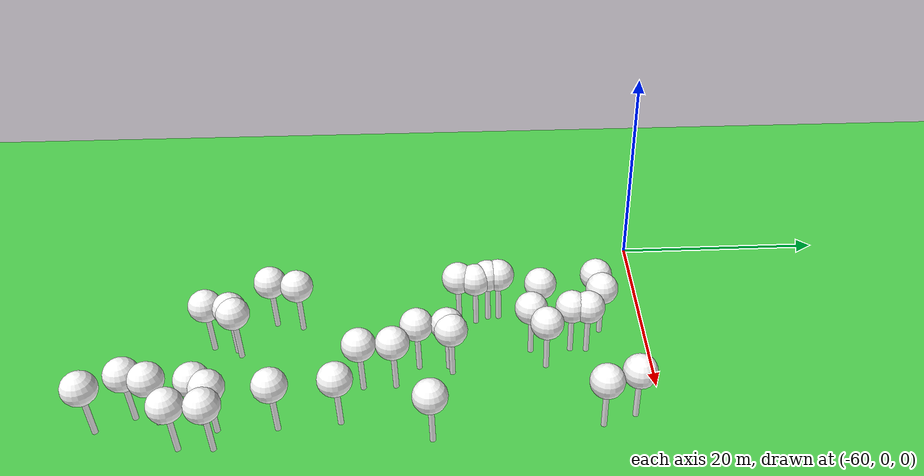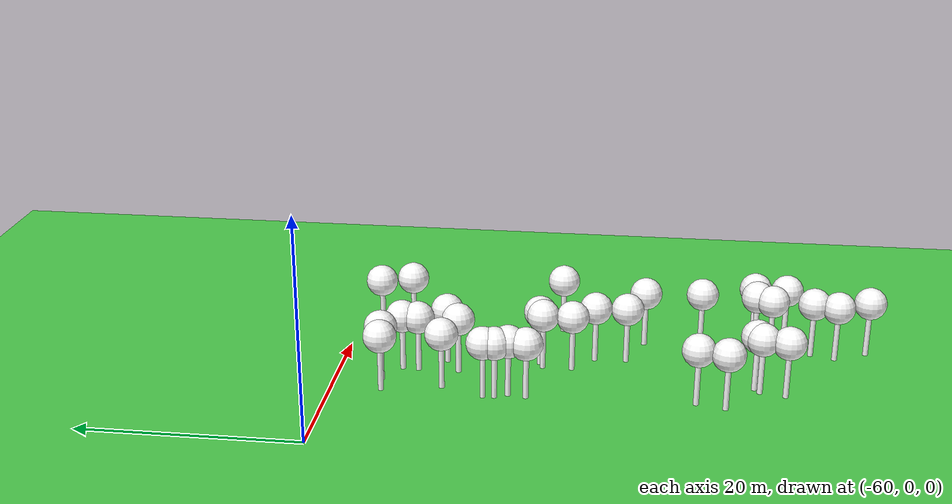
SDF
<sdf version="1.8">
 <world name="forest_world">
  <model name="tree_simple481">
   <static>1</static>
   <link name="link">
    <pose>0 0 0.1 0 -0 0</pose>
    <collision name="collision_trunk">
     <pose>0 0 2 0 -0 0</pose>
     <geometry><cylinder><radius>0.25</radius><length>4</length></cylinder></geometry>
    </collision>
    <collision name="collision_treetop">
     <pose>0 0 5.2 0 -0 0</pose>
     <geometry><sphere><radius>1.5</radius></sphere></geometry>
    </collision>
    <visual name="trunk_481">
     <pose>0 0 2 0 -0 0</pose>
     <geometry><cylinder><radius>0.25</radius><length>4</length></cylinder></geometry>
     <material>
      <ambient>0.5 0.5 0.5 1</ambient>
      <diffuse>1.0 1.0 1.0 1</diffuse>
      <specular>0.0 0.0 0.0 1</specular>
      <pbr>
       <metal>
        <albedo_map>file://textures/tree_simple_trunk.jpg</albedo_map>
        <metalness>0.0</metalness>
        <roughness>0.8</roughness>
       </metal>
      </pbr>
     </material>
    </visual>
    <visual name="treetop_481">
     <pose>0 0 5.2 0 -0 0</pose>
     <geometry><sphere><radius>1.5</radius></sphere></geometry>
     <material>
      <ambient>0.5 0.5 0.5 1</ambient>
      <diffuse>1.0 1.0 1.0 1</diffuse>
      <specular>0.0 0.0 0.0 1</specular>
      <pbr>
       <metal>
        <albedo_map>file://textures/tree_simple_treetop.jpg</albedo_map>
        <metalness>0.0</metalness>
        <roughness>0.9</roughness>
       </metal>
      </pbr>
     </material>
    </visual>
   </link>
   <pose>-37.2553351017 -39.4739685818 0 0 -0 0</pose>
  </model>
  <model name="tree_simple438">
   <static>1</static>
   <link name="link">
    <pose>0 0 0.1 0 -0 0</pose>
    <collision name="collision_trunk">
     <pose>0 0 2 0 -0 0</pose>
     <geometry><cylinder><radius>0.25</radius><length>4</length></cylinder></geometry>
    </collision>
    <collision name="collision_treetop">
     <pose>0 0 5.2 0 -0 0</pose>
     <geometry><sphere><radius>1.5</radius></sphere></geometry>
    </collision>
    <visual name="trunk_438">
     <pose>0 0 2 0 -0 0</pose>
     <geometry><cylinder><radius>0.25</radius><length>4</length></cylinder></geometry>
     <material>
      <ambient>0.5 0.5 0.5 1</ambient>
      <diffuse>1.0 1.0 1.0 1</diffuse>
      <specular>0.0 0.0 0.0 1</specular>
      <pbr>
       <metal>
        <albedo_map>file://textures/tree_simple_trunk.jpg</albedo_map>
        <metalness>0.0</metalness>
        <roughness>0.8</roughness>
       </metal>
      </pbr>
     </material>
    </visual>
    <visual name="treetop_438">
     <pose>0 0 5.2 0 -0 0</pose>
     <geometry><sphere><radius>1.5</radius></sphere></geometry>
     <material>
      <ambient>0.5 0.5 0.5 1</ambient>
      <diffuse>1.0 1.0 1.0 1</diffuse>
      <specular>0.0 0.0 0.0 1</specular>
      <pbr>
       <metal>
        <albedo_map>file://textures/tree_simple_treetop.jpg</albedo_map>
        <metalness>0.0</metalness>
        <roughness>0.9</roughness>
       </metal>
      </pbr>
     </material>
    </visual>
   </link>
   <pose>-34.2898013361 -38.0039942016 0 0 -0 0</pose>
  </model>
  <model name="tree_simple434">
   <static>1</static>
   <link name="link">
    <pose>0 0 0.1 0 -0 0</pose>
    <collision name="collision_trunk">
     <pose>0 0 2 0 -0 0</pose>
     <geometry><cylinder><radius>0.25</radius><length>4</length></cylinder></geometry>
    </collision>
    <collision name="collision_treetop">
     <pose>0 0 5.2 0 -0 0</pose>
     <geometry><sphere><radius>1.5</radius></sphere></geometry>
    </collision>
    <visual name="trunk_434">
     <pose>0 0 2 0 -0 0</pose>
     <geometry><cylinder><radius>0.25</radius><length>4</length></cylinder></geometry>
     <material>
      <ambient>0.5 0.5 0.5 1</ambient>
      <diffuse>1.0 1.0 1.0 1</diffuse>
      <specular>0.0 0.0 0.0 1</specular>
      <pbr>
       <metal>
        <albedo_map>file://textures/tree_simple_trunk.jpg</albedo_map>
        <metalness>0.0</metalness>
        <roughness>0.8</roughness>
       </metal>
      </pbr>
     </material>
    </visual>
    <visual name="treetop_434">
     <pose>0 0 5.2 0 -0 0</pose>
     <geometry><sphere><radius>1.5</radius></sphere></geometry>
     <material>
      <ambient>0.5 0.5 0.5 1</ambient>
      <diffuse>1.0 1.0 1.0 1</diffuse>
      <specular>0.0 0.0 0.0 1</specular>
      <pbr>
       <metal>
        <albedo_map>file://textures/tree_simple_treetop.jpg</albedo_map>
        <metalness>0.0</metalness>
        <roughness>0.9</roughness>
       </metal>
      </pbr>
     </material>
    </visual>
   </link>
   <pose>-43.1297442783 -18.5304452852 0 0 -0 0</pose>
  </model>
  <model name="tree_simple404">
   <static>1</static>
   <link name="link">
    <pose>0 0 0.1 0 -0 0</pose>
    <collision name="collision_trunk">
     <pose>0 0 2 0 -0 0</pose>
     <geometry><cylinder><radius>0.25</radius><length>4</length></cylinder></geometry>
    </collision>
    <collision name="collision_treetop">
     <pose>0 0 5.2 0 -0 0</pose>
     <geometry><sphere><radius>1.5</radius></sphere></geometry>
    </collision>
    <visual name="trunk_404">
     <pose>0 0 2 0 -0 0</pose>
     <geometry><cylinder><radius>0.25</radius><length>4</length></cylinder></geometry>
     <material>
      <ambient>0.5 0.5 0.5 1</ambient>
      <diffuse>1.0 1.0 1.0 1</diffuse>
      <specular>0.0 0.0 0.0 1</specular>
      <pbr>
       <metal>
        <albedo_map>file://textures/tree_simple_trunk.jpg</albedo_map>
        <metalness>0.0</metalness>
        <roughness>0.8</roughness>
       </metal>
      </pbr>
     </material>
    </visual>
    <visual name="treetop_404">
     <pose>0 0 5.2 0 -0 0</pose>
     <geometry><sphere><radius>1.5</radius></sphere></geometry>
     <material>
      <ambient>0.5 0.5 0.5 1</ambient>
      <diffuse>1.0 1.0 1.0 1</diffuse>
      <specular>0.0 0.0 0.0 1</specular>
      <pbr>
       <metal>
        <albedo_map>file://textures/tree_simple_treetop.jpg</albedo_map>
        <metalness>0.0</metalness>
        <roughness>0.9</roughness>
       </metal>
      </pbr>
     </material>
    </visual>
   </link>
   <pose>-45.4192895763 -37.6687183978 0 0 -0 0</pose>
  </model>
  <model name="tree_simple403">
   <static>1</static>
   <link name="link">
    <pose>0 0 0.1 0 -0 0</pose>
    <collision name="collision_trunk">
     <pose>0 0 2 0 -0 0</pose>
     <geometry><cylinder><radius>0.25</radius><length>4</length></cylinder></geometry>
    </collision>
    <collision name="collision_treetop">
     <pose>0 0 5.2 0 -0 0</pose>
     <geometry><sphere><radius>1.5</radius></sphere></geometry>
    </collision>
    <visual name="trunk_403">
     <pose>0 0 2 0 -0 0</pose>
     <geometry><cylinder><radius>0.25</radius><length>4</length></cylinder></geometry>
     <material>
      <ambient>0.5 0.5 0.5 1</ambient>
      <diffuse>1.0 1.0 1.0 1</diffuse>
      <specular>0.0 0.0 0.0 1</specular>
      <pbr>
       <metal>
        <albedo_map>file://textures/tree_simple_trunk.jpg</albedo_map>
        <metalness>0.0</metalness>
        <roughness>0.8</roughness>
       </metal>
      </pbr>
     </material>
    </visual>
    <visual name="treetop_403">
     <pose>0 0 5.2 0 -0 0</pose>
     <geometry><sphere><radius>1.5</radius></sphere></geometry>
     <material>
      <ambient>0.5 0.5 0.5 1</ambient>
      <diffuse>1.0 1.0 1.0 1</diffuse>
      <specular>0.0 0.0 0.0 1</specular>
      <pbr>
       <metal>
        <albedo_map>file://textures/tree_simple_treetop.jpg</albedo_map>
        <metalness>0.0</metalness>
        <roughness>0.9</roughness>
       </metal>
      </pbr>
     </material>
    </visual>
   </link>
   <pose>-49.5316989744 -17.555694289 0 0 -0 0</pose>
  </model>
  <model name="tree_simple396">
   <static>1</static>
   <link name="link">
    <pose>0 0 0.1 0 -0 0</pose>
    <collision name="collision_trunk">
     <pose>0 0 2 0 -0 0</pose>
     <geometry><cylinder><radius>0.25</radius><length>4</length></cylinder></geometry>
    </collision>
    <collision name="collision_treetop">
     <pose>0 0 5.2 0 -0 0</pose>
     <geometry><sphere><radius>1.5</radius></sphere></geometry>
    </collision>
    <visual name="trunk_396">
     <pose>0 0 2 0 -0 0</pose>
     <geometry><cylinder><radius>0.25</radius><length>4</length></cylinder></geometry>
     <material>
      <ambient>0.5 0.5 0.5 1</ambient>
      <diffuse>1.0 1.0 1.0 1</diffuse>
      <specular>0.0 0.0 0.0 1</specular>
      <pbr>
       <metal>
        <albedo_map>file://textures/tree_simple_trunk.jpg</albedo_map>
        <metalness>0.0</metalness>
        <roughness>0.8</roughness>
       </metal>
      </pbr>
     </material>
    </visual>
    <visual name="treetop_396">
     <pose>0 0 5.2 0 -0 0</pose>
     <geometry><sphere><radius>1.5</radius></sphere></geometry>
     <material>
      <ambient>0.5 0.5 0.5 1</ambient>
      <diffuse>1.0 1.0 1.0 1</diffuse>
      <specular>0.0 0.0 0.0 1</specular>
      <pbr>
       <metal>
        <albedo_map>file://textures/tree_simple_treetop.jpg</albedo_map>
        <metalness>0.0</metalness>
        <roughness>0.9</roughness>
       </metal>
      </pbr>
     </material>
    </visual>
   </link>
   <pose>-34.4954871255 -19.8377607827 0 0 -0 0</pose>
  </model>
  <model name="tree_simple375">
   <static>1</static>
   <link name="link">
    <pose>0 0 0.1 0 -0 0</pose>
    <collision name="collision_trunk">
     <pose>0 0 2 0 -0 0</pose>
     <geometry><cylinder><radius>0.25</radius><length>4</length></cylinder></geometry>
    </collision>
    <collision name="collision_treetop">
     <pose>0 0 5.2 0 -0 0</pose>
     <geometry><sphere><radius>1.5</radius></sphere></geometry>
    </collision>
    <visual name="trunk_375">
     <pose>0 0 2 0 -0 0</pose>
     <geometry><cylinder><radius>0.25</radius><length>4</length></cylinder></geometry>
     <material>
      <ambient>0.5 0.5 0.5 1</ambient>
      <diffuse>1.0 1.0 1.0 1</diffuse>
      <specular>0.0 0.0 0.0 1</specular>
      <pbr>
       <metal>
        <albedo_map>file://textures/tree_simple_trunk.jpg</albedo_map>
        <metalness>0.0</metalness>
        <roughness>0.8</roughness>
       </metal>
      </pbr>
     </material>
    </visual>
    <visual name="treetop_375">
     <pose>0 0 5.2 0 -0 0</pose>
     <geometry><sphere><radius>1.5</radius></sphere></geometry>
     <material>
      <ambient>0.5 0.5 0.5 1</ambient>
      <diffuse>1.0 1.0 1.0 1</diffuse>
      <specular>0.0 0.0 0.0 1</specular>
      <pbr>
       <metal>
        <albedo_map>file://textures/tree_simple_treetop.jpg</albedo_map>
        <metalness>0.0</metalness>
        <roughness>0.9</roughness>
       </metal>
      </pbr>
     </material>
    </visual>
   </link>
   <pose>-48.3845088934 -9.9079742 0 0 -0 0</pose>
  </model>
  <model name="tree_simple373">
   <static>1</static>
   <link name="link">
    <pose>0 0 0.1 0 -0 0</pose>
    <collision name="collision_trunk">
     <pose>0 0 2 0 -0 0</pose>
     <geometry><cylinder><radius>0.25</radius><length>4</length></cylinder></geometry>
    </collision>
    <collision name="collision_treetop">
     <pose>0 0 5.2 0 -0 0</pose>
     <geometry><sphere><radius>1.5</radius></sphere></geometry>
    </collision>
    <visual name="trunk_373">
     <pose>0 0 2 0 -0 0</pose>
     <geometry><cylinder><radius>0.25</radius><length>4</length></cylinder></geometry>
     <material>
      <ambient>0.5 0.5 0.5 1</ambient>
      <diffuse>1.0 1.0 1.0 1</diffuse>
      <specular>0.0 0.0 0.0 1</specular>
      <pbr>
       <metal>
        <albedo_map>file://textures/tree_simple_trunk.jpg</albedo_map>
        <metalness>0.0</metalness>
        <roughness>0.8</roughness>
       </metal>
      </pbr>
     </material>
    </visual>
    <visual name="treetop_373">
     <pose>0 0 5.2 0 -0 0</pose>
     <geometry><sphere><radius>1.5</radius></sphere></geometry>
     <material>
      <ambient>0.5 0.5 0.5 1</ambient>
      <diffuse>1.0 1.0 1.0 1</diffuse>
      <specular>0.0 0.0 0.0 1</specular>
      <pbr>
       <metal>
        <albedo_map>file://textures/tree_simple_treetop.jpg</albedo_map>
        <metalness>0.0</metalness>
        <roughness>0.9</roughness>
       </metal>
      </pbr>
     </material>
    </visual>
   </link>
   <pose>-43.1842610619 -21.2191114712 0 0 -0 0</pose>
  </model>
  <model name="tree_simple370">
   <static>1</static>
   <link name="link">
    <pose>0 0 0.1 0 -0 0</pose>
    <collision name="collision_trunk">
     <pose>0 0 2 0 -0 0</pose>
     <geometry><cylinder><radius>0.25</radius><length>4</length></cylinder></geometry>
    </collision>
    <collision name="collision_treetop">
     <pose>0 0 5.2 0 -0 0</pose>
     <geometry><sphere><radius>1.5</radius></sphere></geometry>
    </collision>
    <visual name="trunk_370">
     <pose>0 0 2 0 -0 0</pose>
     <geometry><cylinder><radius>0.25</radius><length>4</length></cylinder></geometry>
     <material>
      <ambient>0.5 0.5 0.5 1</ambient>
      <diffuse>1.0 1.0 1.0 1</diffuse>
      <specular>0.0 0.0 0.0 1</specular>
      <pbr>
       <metal>
        <albedo_map>file://textures/tree_simple_trunk.jpg</albedo_map>
        <metalness>0.0</metalness>
        <roughness>0.8</roughness>
       </metal>
      </pbr>
     </material>
    </visual>
    <visual name="treetop_370">
     <pose>0 0 5.2 0 -0 0</pose>
     <geometry><sphere><radius>1.5</radius></sphere></geometry>
     <material>
      <ambient>0.5 0.5 0.5 1</ambient>
      <diffuse>1.0 1.0 1.0 1</diffuse>
      <specular>0.0 0.0 0.0 1</specular>
      <pbr>
       <metal>
        <albedo_map>file://textures/tree_simple_treetop.jpg</albedo_map>
        <metalness>0.0</metalness>
        <roughness>0.9</roughness>
       </metal>
      </pbr>
     </material>
    </visual>
   </link>
   <pose>-36.749040883 -27.7198172667 0 0 -0 0</pose>
  </model>
  <model name="tree_simple369">
   <static>1</static>
   <link name="link">
    <pose>0 0 0.1 0 -0 0</pose>
    <collision name="collision_trunk">
     <pose>0 0 2 0 -0 0</pose>
     <geometry><cylinder><radius>0.25</radius><length>4</length></cylinder></geometry>
    </collision>
    <collision name="collision_treetop">
     <pose>0 0 5.2 0 -0 0</pose>
     <geometry><sphere><radius>1.5</radius></sphere></geometry>
    </collision>
    <visual name="trunk_369">
     <pose>0 0 2 0 -0 0</pose>
     <geometry><cylinder><radius>0.25</radius><length>4</length></cylinder></geometry>
     <material>
      <ambient>0.5 0.5 0.5 1</ambient>
      <diffuse>1.0 1.0 1.0 1</diffuse>
      <specular>0.0 0.0 0.0 1</specular>
      <pbr>
       <metal>
        <albedo_map>file://textures/tree_simple_trunk.jpg</albedo_map>
        <metalness>0.0</metalness>
        <roughness>0.8</roughness>
       </metal>
      </pbr>
     </material>
    </visual>
    <visual name="treetop_369">
     <pose>0 0 5.2 0 -0 0</pose>
     <geometry><sphere><radius>1.5</radius></sphere></geometry>
     <material>
      <ambient>0.5 0.5 0.5 1</ambient>
      <diffuse>1.0 1.0 1.0 1</diffuse>
      <specular>0.0 0.0 0.0 1</specular>
      <pbr>
       <metal>
        <albedo_map>file://textures/tree_simple_treetop.jpg</albedo_map>
        <metalness>0.0</metalness>
        <roughness>0.9</roughness>
       </metal>
      </pbr>
     </material>
    </visual>
   </link>
   <pose>-40.8904214301 -23.21757156 0 0 -0 0</pose>
  </model>
  <model name="tree_simple341">
   <static>1</static>
   <link name="link">
    <pose>0 0 0.1 0 -0 0</pose>
    <collision name="collision_trunk">
     <pose>0 0 2 0 -0 0</pose>
     <geometry><cylinder><radius>0.25</radius><length>4</length></cylinder></geometry>
    </collision>
    <collision name="collision_treetop">
     <pose>0 0 5.2 0 -0 0</pose>
     <geometry><sphere><radius>1.5</radius></sphere></geometry>
    </collision>
    <visual name="trunk_341">
     <pose>0 0 2 0 -0 0</pose>
     <geometry><cylinder><radius>0.25</radius><length>4</length></cylinder></geometry>
     <material>
      <ambient>0.5 0.5 0.5 1</ambient>
      <diffuse>1.0 1.0 1.0 1</diffuse>
      <specular>0.0 0.0 0.0 1</specular>
      <pbr>
       <metal>
        <albedo_map>file://textures/tree_simple_trunk.jpg</albedo_map>
        <metalness>0.0</metalness>
        <roughness>0.8</roughness>
       </metal>
      </pbr>
     </material>
    </visual>
    <visual name="treetop_341">
     <pose>0 0 5.2 0 -0 0</pose>
     <geometry><sphere><radius>1.5</radius></sphere></geometry>
     <material>
      <ambient>0.5 0.5 0.5 1</ambient>
      <diffuse>1.0 1.0 1.0 1</diffuse>
      <specular>0.0 0.0 0.0 1</specular>
      <pbr>
       <metal>
        <albedo_map>file://textures/tree_simple_treetop.jpg</albedo_map>
        <metalness>0.0</metalness>
        <roughness>0.9</roughness>
       </metal>
      </pbr>
     </material>
    </visual>
   </link>
   <pose>-49.5073976614 -4.58498276765 0 0 -0 0</pose>
  </model>
  <model name="tree_simple326">
   <static>1</static>
   <link name="link">
    <pose>0 0 0.1 0 -0 0</pose>
    <collision name="collision_trunk">
     <pose>0 0 2 0 -0 0</pose>
     <geometry><cylinder><radius>0.25</radius><length>4</length></cylinder></geometry>
    </collision>
    <collision name="collision_treetop">
     <pose>0 0 5.2 0 -0 0</pose>
     <geometry><sphere><radius>1.5</radius></sphere></geometry>
    </collision>
    <visual name="trunk_326">
     <pose>0 0 2 0 -0 0</pose>
     <geometry><cylinder><radius>0.25</radius><length>4</length></cylinder></geometry>
     <material>
      <ambient>0.5 0.5 0.5 1</ambient>
      <diffuse>1.0 1.0 1.0 1</diffuse>
      <specular>0.0 0.0 0.0 1</specular>
      <pbr>
       <metal>
        <albedo_map>file://textures/tree_simple_trunk.jpg</albedo_map>
        <metalness>0.0</metalness>
        <roughness>0.8</roughness>
       </metal>
      </pbr>
     </material>
    </visual>
    <visual name="treetop_326">
     <pose>0 0 5.2 0 -0 0</pose>
     <geometry><sphere><radius>1.5</radius></sphere></geometry>
     <material>
      <ambient>0.5 0.5 0.5 1</ambient>
      <diffuse>1.0 1.0 1.0 1</diffuse>
      <specular>0.0 0.0 0.0 1</specular>
      <pbr>
       <metal>
        <albedo_map>file://textures/tree_simple_treetop.jpg</albedo_map>
        <metalness>0.0</metalness>
        <roughness>0.9</roughness>
       </metal>
      </pbr>
     </material>
    </visual>
   </link>
   <pose>-44.8519520945 -5.80439962373 0 0 -0 0</pose>
  </model>
  <model name="tree_simple323">
   <static>1</static>
   <link name="link">
    <pose>0 0 0.1 0 -0 0</pose>
    <collision name="collision_trunk">
     <pose>0 0 2 0 -0 0</pose>
     <geometry><cylinder><radius>0.25</radius><length>4</length></cylinder></geometry>
    </collision>
    <collision name="collision_treetop">
     <pose>0 0 5.2 0 -0 0</pose>
     <geometry><sphere><radius>1.5</radius></sphere></geometry>
    </collision>
    <visual name="trunk_323">
     <pose>0 0 2 0 -0 0</pose>
     <geometry><cylinder><radius>0.25</radius><length>4</length></cylinder></geometry>
     <material>
      <ambient>0.5 0.5 0.5 1</ambient>
      <diffuse>1.0 1.0 1.0 1</diffuse>
      <specular>0.0 0.0 0.0 1</specular>
      <pbr>
       <metal>
        <albedo_map>file://textures/tree_simple_trunk.jpg</albedo_map>
        <metalness>0.0</metalness>
        <roughness>0.8</roughness>
       </metal>
      </pbr>
     </material>
    </visual>
    <visual name="treetop_323">
     <pose>0 0 5.2 0 -0 0</pose>
     <geometry><sphere><radius>1.5</radius></sphere></geometry>
     <material>
      <ambient>0.5 0.5 0.5 1</ambient>
      <diffuse>1.0 1.0 1.0 1</diffuse>
      <specular>0.0 0.0 0.0 1</specular>
      <pbr>
       <metal>
        <albedo_map>file://textures/tree_simple_treetop.jpg</albedo_map>
        <metalness>0.0</metalness>
        <roughness>0.9</roughness>
       </metal>
      </pbr>
     </material>
    </visual>
   </link>
   <pose>-44.9542016132 -10.9647646888 0 0 -0 0</pose>
  </model>
  <model name="tree_simple318">
   <static>1</static>
   <link name="link">
    <pose>0 0 0.1 0 -0 0</pose>
    <collision name="collision_trunk">
     <pose>0 0 2 0 -0 0</pose>
     <geometry><cylinder><radius>0.25</radius><length>4</length></cylinder></geometry>
    </collision>
    <collision name="collision_treetop">
     <pose>0 0 5.2 0 -0 0</pose>
     <geometry><sphere><radius>1.5</radius></sphere></geometry>
    </collision>
    <visual name="trunk_318">
     <pose>0 0 2 0 -0 0</pose>
     <geometry><cylinder><radius>0.25</radius><length>4</length></cylinder></geometry>
     <material>
      <ambient>0.5 0.5 0.5 1</ambient>
      <diffuse>1.0 1.0 1.0 1</diffuse>
      <specular>0.0 0.0 0.0 1</specular>
      <pbr>
       <metal>
        <albedo_map>file://textures/tree_simple_trunk.jpg</albedo_map>
        <metalness>0.0</metalness>
        <roughness>0.8</roughness>
       </metal>
      </pbr>
     </material>
    </visual>
    <visual name="treetop_318">
     <pose>0 0 5.2 0 -0 0</pose>
     <geometry><sphere><radius>1.5</radius></sphere></geometry>
     <material>
      <ambient>0.5 0.5 0.5 1</ambient>
      <diffuse>1.0 1.0 1.0 1</diffuse>
      <specular>0.0 0.0 0.0 1</specular>
      <pbr>
       <metal>
        <albedo_map>file://textures/tree_simple_treetop.jpg</albedo_map>
        <metalness>0.0</metalness>
        <roughness>0.9</roughness>
       </metal>
      </pbr>
     </material>
    </visual>
   </link>
   <pose>-35.5307244579 -5.31130875944 0 0 -0 0</pose>
  </model>
  <model name="tree_simple312">
   <static>1</static>
   <link name="link">
    <pose>0 0 0.1 0 -0 0</pose>
    <collision name="collision_trunk">
     <pose>0 0 2 0 -0 0</pose>
     <geometry><cylinder><radius>0.25</radius><length>4</length></cylinder></geometry>
    </collision>
    <collision name="collision_treetop">
     <pose>0 0 5.2 0 -0 0</pose>
     <geometry><sphere><radius>1.5</radius></sphere></geometry>
    </collision>
    <visual name="trunk_312">
     <pose>0 0 2 0 -0 0</pose>
     <geometry><cylinder><radius>0.25</radius><length>4</length></cylinder></geometry>
     <material>
      <ambient>0.5 0.5 0.5 1</ambient>
      <diffuse>1.0 1.0 1.0 1</diffuse>
      <specular>0.0 0.0 0.0 1</specular>
      <pbr>
       <metal>
        <albedo_map>file://textures/tree_simple_trunk.jpg</albedo_map>
        <metalness>0.0</metalness>
        <roughness>0.8</roughness>
       </metal>
      </pbr>
     </material>
    </visual>
    <visual name="treetop_312">
     <pose>0 0 5.2 0 -0 0</pose>
     <geometry><sphere><radius>1.5</radius></sphere></geometry>
     <material>
      <ambient>0.5 0.5 0.5 1</ambient>
      <diffuse>1.0 1.0 1.0 1</diffuse>
      <specular>0.0 0.0 0.0 1</specular>
      <pbr>
       <metal>
        <albedo_map>file://textures/tree_simple_treetop.jpg</albedo_map>
        <metalness>0.0</metalness>
        <roughness>0.9</roughness>
       </metal>
      </pbr>
     </material>
    </visual>
   </link>
   <pose>-49.0127914394 -32.4704975261 0 0 -0 0</pose>
  </model>
  <model name="tree_simple259">
   <static>1</static>
   <link name="link">
    <pose>0 0 0.1 0 -0 0</pose>
    <collision name="collision_trunk">
     <pose>0 0 2 0 -0 0</pose>
     <geometry><cylinder><radius>0.25</radius><length>4</length></cylinder></geometry>
    </collision>
    <collision name="collision_treetop">
     <pose>0 0 5.2 0 -0 0</pose>
     <geometry><sphere><radius>1.5</radius></sphere></geometry>
    </collision>
    <visual name="trunk_259">
     <pose>0 0 2 0 -0 0</pose>
     <geometry><cylinder><radius>0.25</radius><length>4</length></cylinder></geometry>
     <material>
      <ambient>0.5 0.5 0.5 1</ambient>
      <diffuse>1.0 1.0 1.0 1</diffuse>
      <specular>0.0 0.0 0.0 1</specular>
      <pbr>
       <metal>
        <albedo_map>file://textures/tree_simple_trunk.jpg</albedo_map>
        <metalness>0.0</metalness>
        <roughness>0.8</roughness>
       </metal>
      </pbr>
     </material>
    </visual>
    <visual name="treetop_259">
     <pose>0 0 5.2 0 -0 0</pose>
     <geometry><sphere><radius>1.5</radius></sphere></geometry>
     <material>
      <ambient>0.5 0.5 0.5 1</ambient>
      <diffuse>1.0 1.0 1.0 1</diffuse>
      <specular>0.0 0.0 0.0 1</specular>
      <pbr>
       <metal>
        <albedo_map>file://textures/tree_simple_treetop.jpg</albedo_map>
        <metalness>0.0</metalness>
        <roughness>0.9</roughness>
       </metal>
      </pbr>
     </material>
    </visual>
   </link>
   <pose>-49.2281564384 -15.9494105315 0 0 -0 0</pose>
  </model>
  <model name="tree_simple241">
   <static>1</static>
   <link name="link">
    <pose>0 0 0.1 0 -0 0</pose>
    <collision name="collision_trunk">
     <pose>0 0 2 0 -0 0</pose>
     <geometry><cylinder><radius>0.25</radius><length>4</length></cylinder></geometry>
    </collision>
    <collision name="collision_treetop">
     <pose>0 0 5.2 0 -0 0</pose>
     <geometry><sphere><radius>1.5</radius></sphere></geometry>
    </collision>
    <visual name="trunk_241">
     <pose>0 0 2 0 -0 0</pose>
     <geometry><cylinder><radius>0.25</radius><length>4</length></cylinder></geometry>
     <material>
      <ambient>0.5 0.5 0.5 1</ambient>
      <diffuse>1.0 1.0 1.0 1</diffuse>
      <specular>0.0 0.0 0.0 1</specular>
      <pbr>
       <metal>
        <albedo_map>file://textures/tree_simple_trunk.jpg</albedo_map>
        <metalness>0.0</metalness>
        <roughness>0.8</roughness>
       </metal>
      </pbr>
     </material>
    </visual>
    <visual name="treetop_241">
     <pose>0 0 5.2 0 -0 0</pose>
     <geometry><sphere><radius>1.5</radius></sphere></geometry>
     <material>
      <ambient>0.5 0.5 0.5 1</ambient>
      <diffuse>1.0 1.0 1.0 1</diffuse>
      <specular>0.0 0.0 0.0 1</specular>
      <pbr>
       <metal>
        <albedo_map>file://textures/tree_simple_treetop.jpg</albedo_map>
        <metalness>0.0</metalness>
        <roughness>0.9</roughness>
       </metal>
      </pbr>
     </material>
    </visual>
   </link>
   <pose>-37.439891657 -43.2397532509 0 0 -0 0</pose>
  </model>
  <model name="tree_simple240">
   <static>1</static>
   <link name="link">
    <pose>0 0 0.1 0 -0 0</pose>
    <collision name="collision_trunk">
     <pose>0 0 2 0 -0 0</pose>
     <geometry><cylinder><radius>0.25</radius><length>4</length></cylinder></geometry>
    </collision>
    <collision name="collision_treetop">
     <pose>0 0 5.2 0 -0 0</pose>
     <geometry><sphere><radius>1.5</radius></sphere></geometry>
    </collision>
    <visual name="trunk_240">
     <pose>0 0 2 0 -0 0</pose>
     <geometry><cylinder><radius>0.25</radius><length>4</length></cylinder></geometry>
     <material>
      <ambient>0.5 0.5 0.5 1</ambient>
      <diffuse>1.0 1.0 1.0 1</diffuse>
      <specular>0.0 0.0 0.0 1</specular>
      <pbr>
       <metal>
        <albedo_map>file://textures/tree_simple_trunk.jpg</albedo_map>
        <metalness>0.0</metalness>
        <roughness>0.8</roughness>
       </metal>
      </pbr>
     </material>
    </visual>
    <visual name="treetop_240">
     <pose>0 0 5.2 0 -0 0</pose>
     <geometry><sphere><radius>1.5</radius></sphere></geometry>
     <material>
      <ambient>0.5 0.5 0.5 1</ambient>
      <diffuse>1.0 1.0 1.0 1</diffuse>
      <specular>0.0 0.0 0.0 1</specular>
      <pbr>
       <metal>
        <albedo_map>file://textures/tree_simple_treetop.jpg</albedo_map>
        <metalness>0.0</metalness>
        <roughness>0.9</roughness>
       </metal>
      </pbr>
     </material>
    </visual>
   </link>
   <pose>-49.7673729573 -14.7908164176 0 0 -0 0</pose>
  </model>
  <model name="tree_simple239">
   <static>1</static>
   <link name="link">
    <pose>0 0 0.1 0 -0 0</pose>
    <collision name="collision_trunk">
     <pose>0 0 2 0 -0 0</pose>
     <geometry><cylinder><radius>0.25</radius><length>4</length></cylinder></geometry>
    </collision>
    <collision name="collision_treetop">
     <pose>0 0 5.2 0 -0 0</pose>
     <geometry><sphere><radius>1.5</radius></sphere></geometry>
    </collision>
    <visual name="trunk_239">
     <pose>0 0 2 0 -0 0</pose>
     <geometry><cylinder><radius>0.25</radius><length>4</length></cylinder></geometry>
     <material>
      <ambient>0.5 0.5 0.5 1</ambient>
      <diffuse>1.0 1.0 1.0 1</diffuse>
      <specular>0.0 0.0 0.0 1</specular>
      <pbr>
       <metal>
        <albedo_map>file://textures/tree_simple_trunk.jpg</albedo_map>
        <metalness>0.0</metalness>
        <roughness>0.8</roughness>
       </metal>
      </pbr>
     </material>
    </visual>
    <visual name="treetop_239">
     <pose>0 0 5.2 0 -0 0</pose>
     <geometry><sphere><radius>1.5</radius></sphere></geometry>
     <material>
      <ambient>0.5 0.5 0.5 1</ambient>
      <diffuse>1.0 1.0 1.0 1</diffuse>
      <specular>0.0 0.0 0.0 1</specular>
      <pbr>
       <metal>
        <albedo_map>file://textures/tree_simple_treetop.jpg</albedo_map>
        <metalness>0.0</metalness>
        <roughness>0.9</roughness>
       </metal>
      </pbr>
     </material>
    </visual>
   </link>
   <pose>-44.9803872855 -7.28495240751 0 0 -0 0</pose>
  </model>
  <model name="tree_simple220">
   <static>1</static>
   <link name="link">
    <pose>0 0 0.1 0 -0 0</pose>
    <collision name="collision_trunk">
     <pose>0 0 2 0 -0 0</pose>
     <geometry><cylinder><radius>0.25</radius><length>4</length></cylinder></geometry>
    </collision>
    <collision name="collision_treetop">
     <pose>0 0 5.2 0 -0 0</pose>
     <geometry><sphere><radius>1.5</radius></sphere></geometry>
    </collision>
    <visual name="trunk_220">
     <pose>0 0 2 0 -0 0</pose>
     <geometry><cylinder><radius>0.25</radius><length>4</length></cylinder></geometry>
     <material>
      <ambient>0.5 0.5 0.5 1</ambient>
      <diffuse>1.0 1.0 1.0 1</diffuse>
      <specular>0.0 0.0 0.0 1</specular>
      <pbr>
       <metal>
        <albedo_map>file://textures/tree_simple_trunk.jpg</albedo_map>
        <metalness>0.0</metalness>
        <roughness>0.8</roughness>
       </metal>
      </pbr>
     </material>
    </visual>
    <visual name="treetop_220">
     <pose>0 0 5.2 0 -0 0</pose>
     <geometry><sphere><radius>1.5</radius></sphere></geometry>
     <material>
      <ambient>0.5 0.5 0.5 1</ambient>
      <diffuse>1.0 1.0 1.0 1</diffuse>
      <specular>0.0 0.0 0.0 1</specular>
      <pbr>
       <metal>
        <albedo_map>file://textures/tree_simple_treetop.jpg</albedo_map>
        <metalness>0.0</metalness>
        <roughness>0.9</roughness>
       </metal>
      </pbr>
     </material>
    </visual>
   </link>
   <pose>-36.5535815793 -2.43279627312 0 0 -0 0</pose>
  </model>
  <model name="tree_simple212">
   <static>1</static>
   <link name="link">
    <pose>0 0 0.1 0 -0 0</pose>
    <collision name="collision_trunk">
     <pose>0 0 2 0 -0 0</pose>
     <geometry><cylinder><radius>0.25</radius><length>4</length></cylinder></geometry>
    </collision>
    <collision name="collision_treetop">
     <pose>0 0 5.2 0 -0 0</pose>
     <geometry><sphere><radius>1.5</radius></sphere></geometry>
    </collision>
    <visual name="trunk_212">
     <pose>0 0 2 0 -0 0</pose>
     <geometry><cylinder><radius>0.25</radius><length>4</length></cylinder></geometry>
     <material>
      <ambient>0.5 0.5 0.5 1</ambient>
      <diffuse>1.0 1.0 1.0 1</diffuse>
      <specular>0.0 0.0 0.0 1</specular>
      <pbr>
       <metal>
        <albedo_map>file://textures/tree_simple_trunk.jpg</albedo_map>
        <metalness>0.0</metalness>
        <roughness>0.8</roughness>
       </metal>
      </pbr>
     </material>
    </visual>
    <visual name="treetop_212">
     <pose>0 0 5.2 0 -0 0</pose>
     <geometry><sphere><radius>1.5</radius></sphere></geometry>
     <material>
      <ambient>0.5 0.5 0.5 1</ambient>
      <diffuse>1.0 1.0 1.0 1</diffuse>
      <specular>0.0 0.0 0.0 1</specular>
      <pbr>
       <metal>
        <albedo_map>file://textures/tree_simple_treetop.jpg</albedo_map>
        <metalness>0.0</metalness>
        <roughness>0.9</roughness>
       </metal>
      </pbr>
     </material>
    </visual>
   </link>
   <pose>-40.8079801591 -26.1075975904 0 0 -0 0</pose>
  </model>
  <model name="tree_simple193">
   <static>1</static>
   <link name="link">
    <pose>0 0 0.1 0 -0 0</pose>
    <collision name="collision_trunk">
     <pose>0 0 2 0 -0 0</pose>
     <geometry><cylinder><radius>0.25</radius><length>4</length></cylinder></geometry>
    </collision>
    <collision name="collision_treetop">
     <pose>0 0 5.2 0 -0 0</pose>
     <geometry><sphere><radius>1.5</radius></sphere></geometry>
    </collision>
    <visual name="trunk_193">
     <pose>0 0 2 0 -0 0</pose>
     <geometry><cylinder><radius>0.25</radius><length>4</length></cylinder></geometry>
     <material>
      <ambient>0.5 0.5 0.5 1</ambient>
      <diffuse>1.0 1.0 1.0 1</diffuse>
      <specular>0.0 0.0 0.0 1</specular>
      <pbr>
       <metal>
        <albedo_map>file://textures/tree_simple_trunk.jpg</albedo_map>
        <metalness>0.0</metalness>
        <roughness>0.8</roughness>
       </metal>
      </pbr>
     </material>
    </visual>
    <visual name="treetop_193">
     <pose>0 0 5.2 0 -0 0</pose>
     <geometry><sphere><radius>1.5</radius></sphere></geometry>
     <material>
      <ambient>0.5 0.5 0.5 1</ambient>
      <diffuse>1.0 1.0 1.0 1</diffuse>
      <specular>0.0 0.0 0.0 1</specular>
      <pbr>
       <metal>
        <albedo_map>file://textures/tree_simple_treetop.jpg</albedo_map>
        <metalness>0.0</metalness>
        <roughness>0.9</roughness>
       </metal>
      </pbr>
     </material>
    </visual>
   </link>
   <pose>-38.0891263237 -45.387736402 0 0 -0 0</pose>
  </model>
  <model name="tree_simple176">
   <static>1</static>
   <link name="link">
    <pose>0 0 0.1 0 -0 0</pose>
    <collision name="collision_trunk">
     <pose>0 0 2 0 -0 0</pose>
     <geometry><cylinder><radius>0.25</radius><length>4</length></cylinder></geometry>
    </collision>
    <collision name="collision_treetop">
     <pose>0 0 5.2 0 -0 0</pose>
     <geometry><sphere><radius>1.5</radius></sphere></geometry>
    </collision>
    <visual name="trunk_176">
     <pose>0 0 2 0 -0 0</pose>
     <geometry><cylinder><radius>0.25</radius><length>4</length></cylinder></geometry>
     <material>
      <ambient>0.5 0.5 0.5 1</ambient>
      <diffuse>1.0 1.0 1.0 1</diffuse>
      <specular>0.0 0.0 0.0 1</specular>
      <pbr>
       <metal>
        <albedo_map>file://textures/tree_simple_trunk.jpg</albedo_map>
        <metalness>0.0</metalness>
        <roughness>0.8</roughness>
       </metal>
      </pbr>
     </material>
    </visual>
    <visual name="treetop_176">
     <pose>0 0 5.2 0 -0 0</pose>
     <geometry><sphere><radius>1.5</radius></sphere></geometry>
     <material>
      <ambient>0.5 0.5 0.5 1</ambient>
      <diffuse>1.0 1.0 1.0 1</diffuse>
      <specular>0.0 0.0 0.0 1</specular>
      <pbr>
       <metal>
        <albedo_map>file://textures/tree_simple_treetop.jpg</albedo_map>
        <metalness>0.0</metalness>
        <roughness>0.9</roughness>
       </metal>
      </pbr>
     </material>
    </visual>
   </link>
   <pose>-34.4242902166 -40.9558999471 0 0 -0 0</pose>
  </model>
  <model name="tree_simple172">
   <static>1</static>
   <link name="link">
    <pose>0 0 0.1 0 -0 0</pose>
    <collision name="collision_trunk">
     <pose>0 0 2 0 -0 0</pose>
     <geometry><cylinder><radius>0.25</radius><length>4</length></cylinder></geometry>
    </collision>
    <collision name="collision_treetop">
     <pose>0 0 5.2 0 -0 0</pose>
     <geometry><sphere><radius>1.5</radius></sphere></geometry>
    </collision>
    <visual name="trunk_172">
     <pose>0 0 2 0 -0 0</pose>
     <geometry><cylinder><radius>0.25</radius><length>4</length></cylinder></geometry>
     <material>
      <ambient>0.5 0.5 0.5 1</ambient>
      <diffuse>1.0 1.0 1.0 1</diffuse>
      <specular>0.0 0.0 0.0 1</specular>
      <pbr>
       <metal>
        <albedo_map>file://textures/tree_simple_trunk.jpg</albedo_map>
        <metalness>0.0</metalness>
        <roughness>0.8</roughness>
       </metal>
      </pbr>
     </material>
    </visual>
    <visual name="treetop_172">
     <pose>0 0 5.2 0 -0 0</pose>
     <geometry><sphere><radius>1.5</radius></sphere></geometry>
     <material>
      <ambient>0.5 0.5 0.5 1</ambient>
      <diffuse>1.0 1.0 1.0 1</diffuse>
      <specular>0.0 0.0 0.0 1</specular>
      <pbr>
       <metal>
        <albedo_map>file://textures/tree_simple_treetop.jpg</albedo_map>
        <metalness>0.0</metalness>
        <roughness>0.9</roughness>
       </metal>
      </pbr>
     </material>
    </visual>
   </link>
   <pose>-36.3388025574 -38.096874475 0 0 -0 0</pose>
  </model>
  <model name="tree_simple171">
   <static>1</static>
   <link name="link">
    <pose>0 0 0.1 0 -0 0</pose>
    <collision name="collision_trunk">
     <pose>0 0 2 0 -0 0</pose>
     <geometry><cylinder><radius>0.25</radius><length>4</length></cylinder></geometry>
    </collision>
    <collision name="collision_treetop">
     <pose>0 0 5.2 0 -0 0</pose>
     <geometry><sphere><radius>1.5</radius></sphere></geometry>
    </collision>
    <visual name="trunk_171">
     <pose>0 0 2 0 -0 0</pose>
     <geometry><cylinder><radius>0.25</radius><length>4</length></cylinder></geometry>
     <material>
      <ambient>0.5 0.5 0.5 1</ambient>
      <diffuse>1.0 1.0 1.0 1</diffuse>
      <specular>0.0 0.0 0.0 1</specular>
      <pbr>
       <metal>
        <albedo_map>file://textures/tree_simple_trunk.jpg</albedo_map>
        <metalness>0.0</metalness>
        <roughness>0.8</roughness>
       </metal>
      </pbr>
     </material>
    </visual>
    <visual name="treetop_171">
     <pose>0 0 5.2 0 -0 0</pose>
     <geometry><sphere><radius>1.5</radius></sphere></geometry>
     <material>
      <ambient>0.5 0.5 0.5 1</ambient>
      <diffuse>1.0 1.0 1.0 1</diffuse>
      <specular>0.0 0.0 0.0 1</specular>
      <pbr>
       <metal>
        <albedo_map>file://textures/tree_simple_treetop.jpg</albedo_map>
        <metalness>0.0</metalness>
        <roughness>0.9</roughness>
       </metal>
      </pbr>
     </material>
    </visual>
   </link>
   <pose>-47.4177148869 -4.27301626353 0 0 -0 0</pose>
  </model>
  <model name="tree_simple146">
   <static>1</static>
   <link name="link">
    <pose>0 0 0.1 0 -0 0</pose>
    <collision name="collision_trunk">
     <pose>0 0 2 0 -0 0</pose>
     <geometry><cylinder><radius>0.25</radius><length>4</length></cylinder></geometry>
    </collision>
    <collision name="collision_treetop">
     <pose>0 0 5.2 0 -0 0</pose>
     <geometry><sphere><radius>1.5</radius></sphere></geometry>
    </collision>
    <visual name="trunk_146">
     <pose>0 0 2 0 -0 0</pose>
     <geometry><cylinder><radius>0.25</radius><length>4</length></cylinder></geometry>
     <material>
      <ambient>0.5 0.5 0.5 1</ambient>
      <diffuse>1.0 1.0 1.0 1</diffuse>
      <specular>0.0 0.0 0.0 1</specular>
      <pbr>
       <metal>
        <albedo_map>file://textures/tree_simple_trunk.jpg</albedo_map>
        <metalness>0.0</metalness>
        <roughness>0.8</roughness>
       </metal>
      </pbr>
     </material>
    </visual>
    <visual name="treetop_146">
     <pose>0 0 5.2 0 -0 0</pose>
     <geometry><sphere><radius>1.5</radius></sphere></geometry>
     <material>
      <ambient>0.5 0.5 0.5 1</ambient>
      <diffuse>1.0 1.0 1.0 1</diffuse>
      <specular>0.0 0.0 0.0 1</specular>
      <pbr>
       <metal>
        <albedo_map>file://textures/tree_simple_treetop.jpg</albedo_map>
        <metalness>0.0</metalness>
        <roughness>0.9</roughness>
       </metal>
      </pbr>
     </material>
    </visual>
   </link>
   <pose>-42.8686467761 -9.68210025238 0 0 -0 0</pose>
  </model>
  <model name="tree_simple129">
   <static>1</static>
   <link name="link">
    <pose>0 0 0.1 0 -0 0</pose>
    <collision name="collision_trunk">
     <pose>0 0 2 0 -0 0</pose>
     <geometry><cylinder><radius>0.25</radius><length>4</length></cylinder></geometry>
    </collision>
    <collision name="collision_treetop">
     <pose>0 0 5.2 0 -0 0</pose>
     <geometry><sphere><radius>1.5</radius></sphere></geometry>
    </collision>
    <visual name="trunk_129">
     <pose>0 0 2 0 -0 0</pose>
     <geometry><cylinder><radius>0.25</radius><length>4</length></cylinder></geometry>
     <material>
      <ambient>0.5 0.5 0.5 1</ambient>
      <diffuse>1.0 1.0 1.0 1</diffuse>
      <specular>0.0 0.0 0.0 1</specular>
      <pbr>
       <metal>
        <albedo_map>file://textures/tree_simple_trunk.jpg</albedo_map>
        <metalness>0.0</metalness>
        <roughness>0.8</roughness>
       </metal>
      </pbr>
     </material>
    </visual>
    <visual name="treetop_129">
     <pose>0 0 5.2 0 -0 0</pose>
     <geometry><sphere><radius>1.5</radius></sphere></geometry>
     <material>
      <ambient>0.5 0.5 0.5 1</ambient>
      <diffuse>1.0 1.0 1.0 1</diffuse>
      <specular>0.0 0.0 0.0 1</specular>
      <pbr>
       <metal>
        <albedo_map>file://textures/tree_simple_treetop.jpg</albedo_map>
        <metalness>0.0</metalness>
        <roughness>0.9</roughness>
       </metal>
      </pbr>
     </material>
    </visual>
   </link>
   <pose>-46.082766629 -38.1150560833 0 0 -0 0</pose>
  </model>
  <model name="tree_simple91">
   <static>1</static>
   <link name="link">
    <pose>0 0 0.1 0 -0 0</pose>
    <collision name="collision_trunk">
     <pose>0 0 2 0 -0 0</pose>
     <geometry><cylinder><radius>0.25</radius><length>4</length></cylinder></geometry>
    </collision>
    <collision name="collision_treetop">
     <pose>0 0 5.2 0 -0 0</pose>
     <geometry><sphere><radius>1.5</radius></sphere></geometry>
    </collision>
    <visual name="trunk_91">
     <pose>0 0 2 0 -0 0</pose>
     <geometry><cylinder><radius>0.25</radius><length>4</length></cylinder></geometry>
     <material>
      <ambient>0.5 0.5 0.5 1</ambient>
      <diffuse>1.0 1.0 1.0 1</diffuse>
      <specular>0.0 0.0 0.0 1</specular>
      <pbr>
       <metal>
        <albedo_map>file://textures/tree_simple_trunk.jpg</albedo_map>
        <metalness>0.0</metalness>
        <roughness>0.8</roughness>
       </metal>
      </pbr>
     </material>
    </visual>
    <visual name="treetop_91">
     <pose>0 0 5.2 0 -0 0</pose>
     <geometry><sphere><radius>1.5</radius></sphere></geometry>
     <material>
      <ambient>0.5 0.5 0.5 1</ambient>
      <diffuse>1.0 1.0 1.0 1</diffuse>
      <specular>0.0 0.0 0.0 1</specular>
      <pbr>
       <metal>
        <albedo_map>file://textures/tree_simple_treetop.jpg</albedo_map>
        <metalness>0.0</metalness>
        <roughness>0.9</roughness>
       </metal>
      </pbr>
     </material>
    </visual>
   </link>
   <pose>-49.8341450527 -13.7707098392 0 0 -0 0</pose>
  </model>
  <model name="tree_simple83">
   <static>1</static>
   <link name="link">
    <pose>0 0 0.1 0 -0 0</pose>
    <collision name="collision_trunk">
     <pose>0 0 2 0 -0 0</pose>
     <geometry><cylinder><radius>0.25</radius><length>4</length></cylinder></geometry>
    </collision>
    <collision name="collision_treetop">
     <pose>0 0 5.2 0 -0 0</pose>
     <geometry><sphere><radius>1.5</radius></sphere></geometry>
    </collision>
    <visual name="trunk_83">
     <pose>0 0 2 0 -0 0</pose>
     <geometry><cylinder><radius>0.25</radius><length>4</length></cylinder></geometry>
     <material>
      <ambient>0.5 0.5 0.5 1</ambient>
      <diffuse>1.0 1.0 1.0 1</diffuse>
      <specular>0.0 0.0 0.0 1</specular>
      <pbr>
       <metal>
        <albedo_map>file://textures/tree_simple_trunk.jpg</albedo_map>
        <metalness>0.0</metalness>
        <roughness>0.8</roughness>
       </metal>
      </pbr>
     </material>
    </visual>
    <visual name="treetop_83">
     <pose>0 0 5.2 0 -0 0</pose>
     <geometry><sphere><radius>1.5</radius></sphere></geometry>
     <material>
      <ambient>0.5 0.5 0.5 1</ambient>
      <diffuse>1.0 1.0 1.0 1</diffuse>
      <specular>0.0 0.0 0.0 1</specular>
      <pbr>
       <metal>
        <albedo_map>file://textures/tree_simple_treetop.jpg</albedo_map>
        <metalness>0.0</metalness>
        <roughness>0.9</roughness>
       </metal>
      </pbr>
     </material>
    </visual>
   </link>
   <pose>-49.6712926958 -35.0160914231 0 0 -0 0</pose>
  </model>
  <model name="tree_simple75">
   <static>1</static>
   <link name="link">
    <pose>0 0 0.1 0 -0 0</pose>
    <collision name="collision_trunk">
     <pose>0 0 2 0 -0 0</pose>
     <geometry><cylinder><radius>0.25</radius><length>4</length></cylinder></geometry>
    </collision>
    <collision name="collision_treetop">
     <pose>0 0 5.2 0 -0 0</pose>
     <geometry><sphere><radius>1.5</radius></sphere></geometry>
    </collision>
    <visual name="trunk_75">
     <pose>0 0 2 0 -0 0</pose>
     <geometry><cylinder><radius>0.25</radius><length>4</length></cylinder></geometry>
     <material>
      <ambient>0.5 0.5 0.5 1</ambient>
      <diffuse>1.0 1.0 1.0 1</diffuse>
      <specular>0.0 0.0 0.0 1</specular>
      <pbr>
       <metal>
        <albedo_map>file://textures/tree_simple_trunk.jpg</albedo_map>
        <metalness>0.0</metalness>
        <roughness>0.8</roughness>
       </metal>
      </pbr>
     </material>
    </visual>
    <visual name="treetop_75">
     <pose>0 0 5.2 0 -0 0</pose>
     <geometry><sphere><radius>1.5</radius></sphere></geometry>
     <material>
      <ambient>0.5 0.5 0.5 1</ambient>
      <diffuse>1.0 1.0 1.0 1</diffuse>
      <specular>0.0 0.0 0.0 1</specular>
      <pbr>
       <metal>
        <albedo_map>file://textures/tree_simple_treetop.jpg</albedo_map>
        <metalness>0.0</metalness>
        <roughness>0.9</roughness>
       </metal>
      </pbr>
     </material>
    </visual>
   </link>
   <pose>-42.3546026357 -18.1931921773 0 0 -0 0</pose>
  </model>
  <model name="tree_simple67">
   <static>1</static>
   <link name="link">
    <pose>0 0 0.1 0 -0 0</pose>
    <collision name="collision_trunk">
     <pose>0 0 2 0 -0 0</pose>
     <geometry><cylinder><radius>0.25</radius><length>4</length></cylinder></geometry>
    </collision>
    <collision name="collision_treetop">
     <pose>0 0 5.2 0 -0 0</pose>
     <geometry><sphere><radius>1.5</radius></sphere></geometry>
    </collision>
    <visual name="trunk_67">
     <pose>0 0 2 0 -0 0</pose>
     <geometry><cylinder><radius>0.25</radius><length>4</length></cylinder></geometry>
     <material>
      <ambient>0.5 0.5 0.5 1</ambient>
      <diffuse>1.0 1.0 1.0 1</diffuse>
      <specular>0.0 0.0 0.0 1</specular>
      <pbr>
       <metal>
        <albedo_map>file://textures/tree_simple_trunk.jpg</albedo_map>
        <metalness>0.0</metalness>
        <roughness>0.8</roughness>
       </metal>
      </pbr>
     </material>
    </visual>
    <visual name="treetop_67">
     <pose>0 0 5.2 0 -0 0</pose>
     <geometry><sphere><radius>1.5</radius></sphere></geometry>
     <material>
      <ambient>0.5 0.5 0.5 1</ambient>
      <diffuse>1.0 1.0 1.0 1</diffuse>
      <specular>0.0 0.0 0.0 1</specular>
      <pbr>
       <metal>
        <albedo_map>file://textures/tree_simple_treetop.jpg</albedo_map>
        <metalness>0.0</metalness>
        <roughness>0.9</roughness>
       </metal>
      </pbr>
     </material>
    </visual>
   </link>
   <pose>-36.6256451993 -48.3909294088 0 0 -0 0</pose>
  </model>
  <model name="tree_simple41">
   <static>1</static>
   <link name="link">
    <pose>0 0 0.1 0 -0 0</pose>
    <collision name="collision_trunk">
     <pose>0 0 2 0 -0 0</pose>
     <geometry><cylinder><radius>0.25</radius><length>4</length></cylinder></geometry>
    </collision>
    <collision name="collision_treetop">
     <pose>0 0 5.2 0 -0 0</pose>
     <geometry><sphere><radius>1.5</radius></sphere></geometry>
    </collision>
    <visual name="trunk_41">
     <pose>0 0 2 0 -0 0</pose>
     <geometry><cylinder><radius>0.25</radius><length>4</length></cylinder></geometry>
     <material>
      <ambient>0.5 0.5 0.5 1</ambient>
      <diffuse>1.0 1.0 1.0 1</diffuse>
      <specular>0.0 0.0 0.0 1</specular>
      <pbr>
       <metal>
        <albedo_map>file://textures/tree_simple_trunk.jpg</albedo_map>
        <metalness>0.0</metalness>
        <roughness>0.8</roughness>
       </metal>
      </pbr>
     </material>
    </visual>
    <visual name="treetop_41">
     <pose>0 0 5.2 0 -0 0</pose>
     <geometry><sphere><radius>1.5</radius></sphere></geometry>
     <material>
      <ambient>0.5 0.5 0.5 1</ambient>
      <diffuse>1.0 1.0 1.0 1</diffuse>
      <specular>0.0 0.0 0.0 1</specular>
      <pbr>
       <metal>
        <albedo_map>file://textures/tree_simple_treetop.jpg</albedo_map>
        <metalness>0.0</metalness>
        <roughness>0.9</roughness>
       </metal>
      </pbr>
     </material>
    </visual>
   </link>
   <pose>-46.5792527836 -40.3552194107 0 0 -0 0</pose>
  </model>
  <model name="tree_simple15">
   <static>1</static>
   <link name="link">
    <pose>0 0 0.1 0 -0 0</pose>
    <collision name="collision_trunk">
     <pose>0 0 2 0 -0 0</pose>
     <geometry><cylinder><radius>0.25</radius><length>4</length></cylinder></geometry>
    </collision>
    <collision name="collision_treetop">
     <pose>0 0 5.2 0 -0 0</pose>
     <geometry><sphere><radius>1.5</radius></sphere></geometry>
    </collision>
    <visual name="trunk_15">
     <pose>0 0 2 0 -0 0</pose>
     <geometry><cylinder><radius>0.25</radius><length>4</length></cylinder></geometry>
     <material>
      <ambient>0.5 0.5 0.5 1</ambient>
      <diffuse>1.0 1.0 1.0 1</diffuse>
      <specular>0.0 0.0 0.0 1</specular>
      <pbr>
       <metal>
        <albedo_map>file://textures/tree_simple_trunk.jpg</albedo_map>
        <metalness>0.0</metalness>
        <roughness>0.8</roughness>
       </metal>
      </pbr>
     </material>
    </visual>
    <visual name="treetop_15">
     <pose>0 0 5.2 0 -0 0</pose>
     <geometry><sphere><radius>1.5</radius></sphere></geometry>
     <material>
      <ambient>0.5 0.5 0.5 1</ambient>
      <diffuse>1.0 1.0 1.0 1</diffuse>
      <specular>0.0 0.0 0.0 1</specular>
      <pbr>
       <metal>
        <albedo_map>file://textures/tree_simple_treetop.jpg</albedo_map>
        <metalness>0.0</metalness>
        <roughness>0.9</roughness>
       </metal>
      </pbr>
     </material>
    </visual>
   </link>
   <pose>-36.3232609195 -32.993952596 0 0 -0 0</pose>
  </model>
  <model name="ground_plane">
   <static>true</static>
   <link name="link">
    <collision name="collision">
     <geometry><plane><normal>0 0 1</normal><size>250 250</size></plane></geometry>
     <surface><friction><ode><mu>1</mu><mu2>1</mu2></ode></friction></surface>
    </collision>
    <visual name="grass">
     <cast_shadows>false</cast_shadows>
     <geometry><mesh><uri>file://textures/grass_plane.dae</uri><scale>1 1 1</scale></mesh></geometry>
     <material>
      <ambient>0.2 0.6 0.2 1</ambient>
      <diffuse>0.3 0.8 0.3 1</diffuse>
      <specular>0.1 0.1 0.1 1</specular>
      <pbr>
       <metal>
        <albedo_map>file://textures/grass_seamless.jpg</albedo_map>
        <metalness>0.0</metalness>
        <roughness>0.9</roughness>
       </metal>
      </pbr>
     </material>
    </visual>
   </link>
  </model>
 </world>
</sdf>
